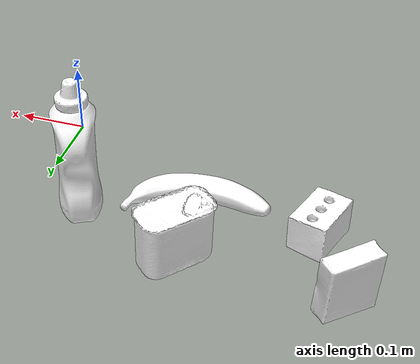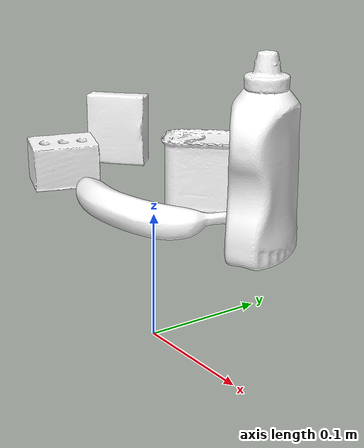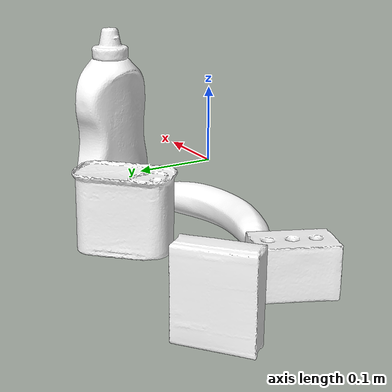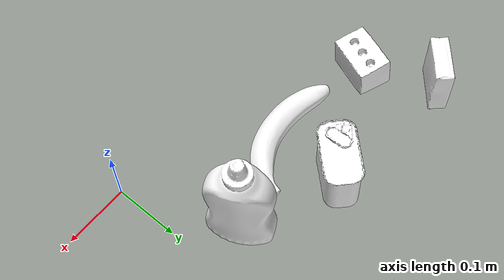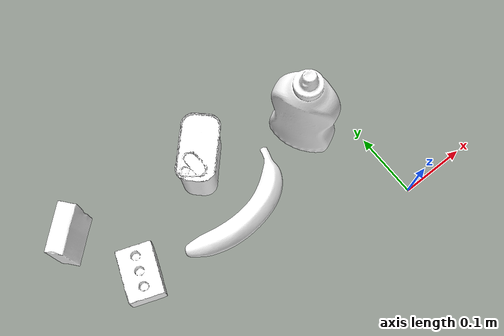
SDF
<sdf version="1.6">
  <world name="default">
    <gravity>0 0 -9.8</gravity>
    <model name="YcbBanana">
      <pose frame=''>-0.196 0.11794 0.005 0 0 -2.9845</pose>
      <link name="baselink">
        <contact>
          <lateral_friction>0.3</lateral_friction>
          <rolling_friction>0.001</rolling_friction>
          <contact_cfm>0.0</contact_cfm>
          <contact_erp>1.0</contact_erp>
        </contact>
        <inertial>
          <pose frame=''>0.01 0.0 0.01 0.0 0.0 0.0</pose>
          <mass>0.066</mass>
          <inertia>
            <ixx>1e-3</ixx>
            <ixy>0</ixy>
            <ixz>0</ixz>
            <iyy>1e-3</iyy>
            <iyz>0</iyz>
            <izz>1e-3</izz>
          </inertia>
        </inertial>
        <visual name="visual">
          <geometry>
            <mesh>
              <scale>1 1 1</scale>
              <uri>../ycb_objects/YcbBanana/textured_simple_reoriented.obj</uri>
            </mesh>
          </geometry>
          <material>
            <ambient>1 1 1 1</ambient>
            <diffuse>1.00000 1.00000 1.000000 1</diffuse>
            <specular>.5 .5 .5 1</specular>
            <emissive>0 0 0 0</emissive>
          </material>
        </visual>
        <collision name="collision">
          <geometry>
            <mesh>
              <scale>1 1 1</scale>
              <uri>../ycb_objects/YcbBanana/collision_vhacd.obj</uri>
            </mesh>
          </geometry>
        </collision>
      </link>
    </model>
    <model name="YcbMustardBottle">
      <pose frame=''>-0.07479 0.161 0.09 0 0 1.9390639</pose>
      <link name="baselink">
        <contact>
          <lateral_friction>0.8</lateral_friction>
          <spinning_friction>0.001</spinning_friction>
          <rolling_friction>0.001</rolling_friction>
          <contact_cfm>0.0</contact_cfm>
          <contact_erp>1.0</contact_erp>
        </contact>
        <inertial>
          <pose frame=''>0.005 -0.005 -0.015 0 0 0.1</pose>
          <mass>0.603</mass>
          <inertia>
            <ixx>1e-3</ixx>
            <ixy>0</ixy>
            <ixz>0</ixz>
            <iyy>1e-3</iyy>
            <iyz>0</iyz>
            <izz>1e-3</izz>
          </inertia>
        </inertial>
        <visual name="visual">
          <geometry>
            <mesh>
              <scale>1 1 1</scale>
              <uri>../ycb_objects/YcbMustardBottle/textured_simple_reoriented.obj</uri>
            </mesh>
          </geometry>
          <material>
            <ambient>1 1 1 1</ambient>
            <diffuse>1.00000 1.00000 1.000000 1</diffuse>
            <specular>.5 .5 .5 1</specular>
            <emissive>0 0 0 0</emissive>
          </material>
        </visual>
        <collision name="collision">
          <geometry>
            <mesh>
              <scale>1 1 1</scale>
              <uri>../ycb_objects/YcbMustardBottle/collision_vhacd.obj</uri>
            </mesh>
          </geometry>
        </collision>
      </link>
    </model>
    <model name="YcbPottedMeatCan">
      <pose frame=''>-0.229 0.224 0.047 0 0 -1.7217114</pose>
      <link name="baselink">
         <contact>
          <lateral_friction>0.6</lateral_friction>
          <rolling_friction>0.0</rolling_friction>
          <contact_cfm>0.0</contact_cfm>
          <contact_erp>1.0</contact_erp>
        </contact>
        <inertial>
          <pose frame=''>0 0.012 -0.01 0 0 -0.5</pose>
          <mass>0.370</mass>
          <inertia>
            <ixx>1e-3</ixx>
            <ixy>0</ixy>
            <ixz>0</ixz>
            <iyy>1e-3</iyy>
            <iyz>0</iyz>
            <izz>1e-3</izz>
          </inertia>
        </inertial>
        <visual name="visual">
          <geometry>
            <mesh>
              <scale>1 1 1</scale>
              <uri>../ycb_objects/YcbPottedMeatCan/textured_simple_reoriented.obj</uri>
            </mesh>
          </geometry>
          <material>
            <ambient>1 1 1 1</ambient>
            <diffuse>1.00000 1.00000 1.000000 1</diffuse>
            <specular>.5 .5 .5 1</specular>
            <emissive>0 0 0 0</emissive>
          </material>
        </visual>
        <collision name="collision">
          <geometry>
            <mesh>
              <scale>1 1 1</scale>
              <uri>../ycb_objects/YcbPottedMeatCan/collision_vhacd.obj</uri>
            </mesh>
          </geometry>
        </collision>
      </link>
    </model>
    <model name="YcbGelatinBox">
      <pose frame=''>-0.430 0.23849 0.01 0 0 0</pose>
      <link name="baselink">
        <contact>
          <lateral_friction>0.3</lateral_friction>
          <rolling_friction>0.0</rolling_friction>
          <contact_cfm>0.0</contact_cfm>
          <contact_erp>1.0</contact_erp>
        </contact>
        <inertial>
          <pose frame=''>0 0 0.025 1.57 0 -0.75</pose>
          <mass>0.097</mass>
          <inertia>
            <ixx>1e-3</ixx>
            <ixy>0</ixy>
            <ixz>0</ixz>
            <iyy>1e-3</iyy>
            <iyz>0</iyz>
            <izz>1e-3</izz>
          </inertia>
        </inertial>
        <visual name="visual">
          <geometry>
            <mesh>
              <scale>1 1 1</scale>
              <uri>../ycb_objects/YcbGelatinBox/textured_simple_reoriented.obj</uri>
            </mesh>
          </geometry>
          <material>
            <ambient>1 1 1 1</ambient>
            <diffuse>1.00000 1.00000 1.000000 1</diffuse>
            <specular>.5 .5 .5 1</specular>
            <emissive>0 0 0 0</emissive>
          </material>
        </visual>
        <collision name="collision">
          <geometry>
            <mesh>
              <scale>1 1 1</scale>
              <uri>../ycb_objects/YcbGelatinBox/collision_vhacd.obj</uri>
            </mesh>
          </geometry>
        </collision>
      </link>
    </model>
    <model name="YcbFoamBrick">
      <pose frame=''>-0.374 0.13899 0.018 0 0 0</pose>
      <link name="baselink">
        <contact>
          <lateral_friction>0.5</lateral_friction>
          <rolling_friction>0.0</rolling_friction>
          <contact_cfm>0.0</contact_cfm>
          <contact_erp>1.0</contact_erp>
        </contact>
        <inertial>
          <pose frame=''>-0.013 -0.005 -0.0 0 0 -0.35</pose>
          <mass>0.028</mass>
          <inertia>
            <ixx>1e-3</ixx>
            <ixy>0</ixy>
            <ixz>0</ixz>
            <iyy>1e-3</iyy>
            <iyz>0</iyz>
            <izz>1e-3</izz>
          </inertia>
        </inertial>
        <visual name="visual">
          <geometry>
            <mesh>
              <scale>1 1 1</scale>
              <uri>../ycb_objects/YcbFoamBrick/textured_simple_reoriented.obj</uri>
            </mesh>
          </geometry>
          <material>
            <ambient>1 1 1 1</ambient>
            <diffuse>1.00000 1.00000 1.000000 1</diffuse>
            <specular>.5 .5 .5 1</specular>
            <emissive>0 0 0 0</emissive>
          </material>
        </visual>
        <collision name="collision">
          <geometry>
            <mesh>
              <scale>1 1 1</scale>
              <uri>../ycb_objects/YcbFoamBrick/collision_vhacd.obj</uri>
            </mesh>
          </geometry>
        </collision>
      </link>
    </model>
  </world>
</sdf>
